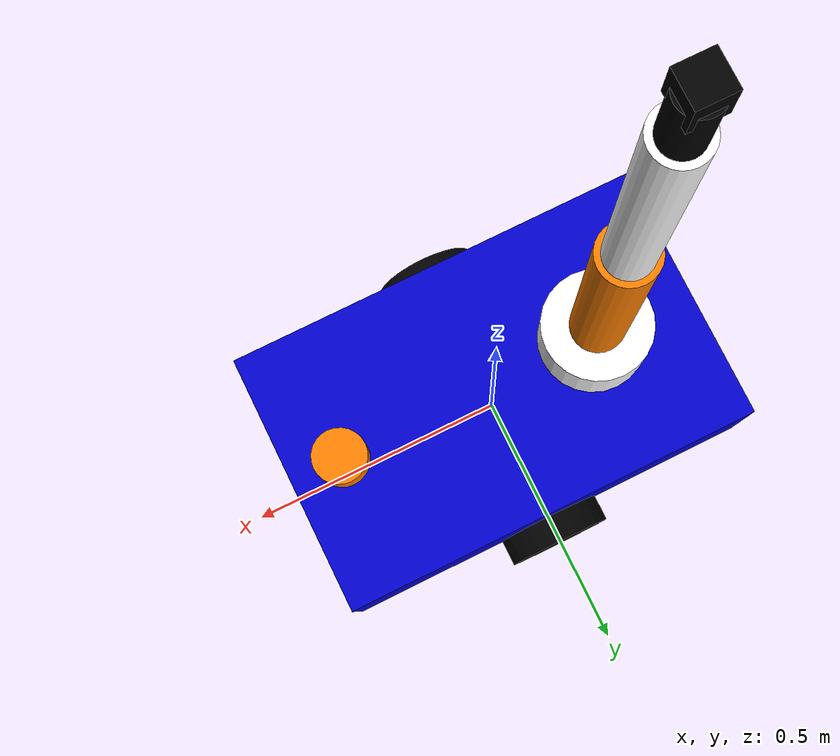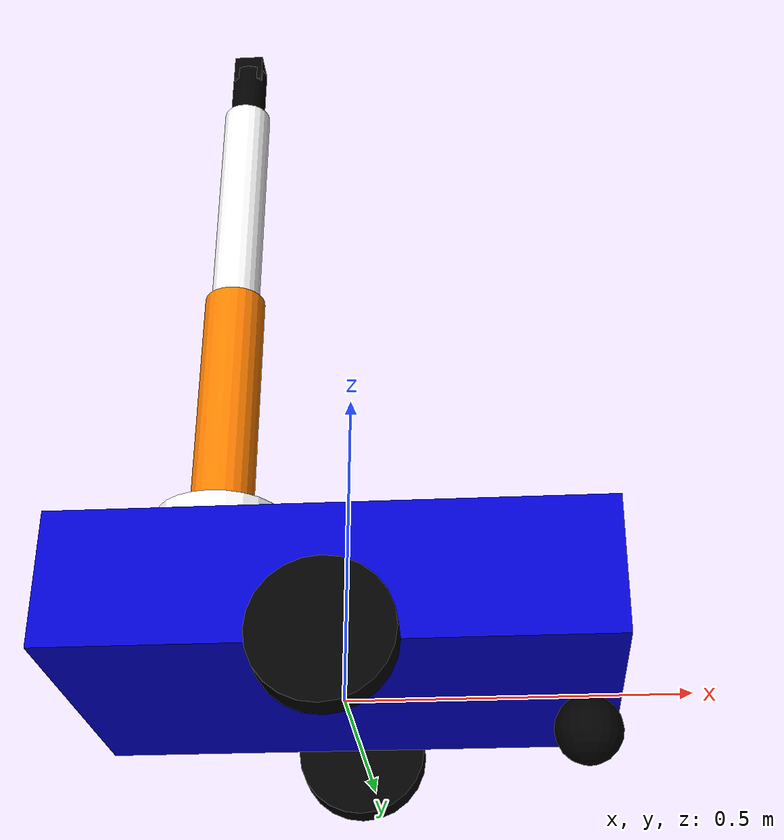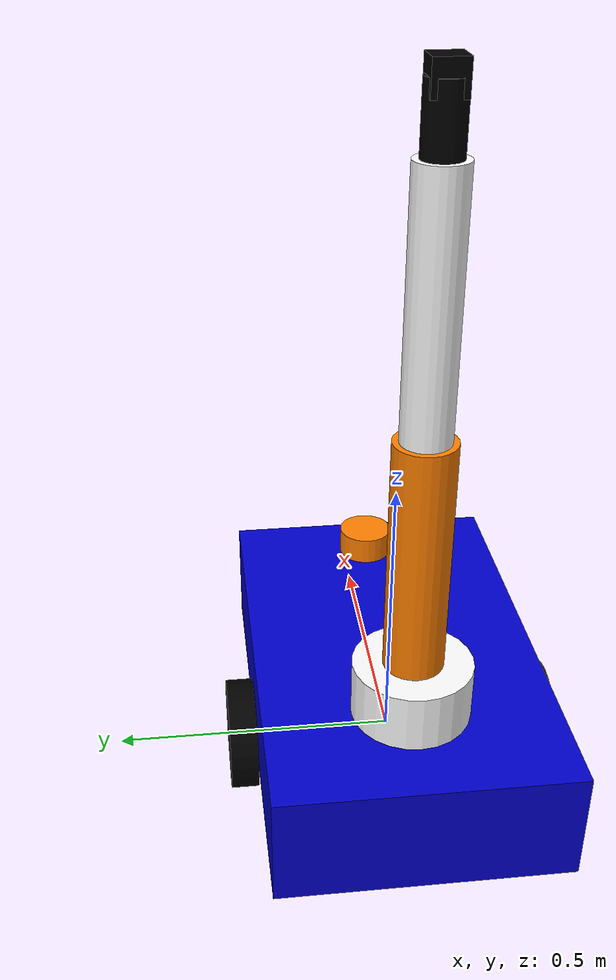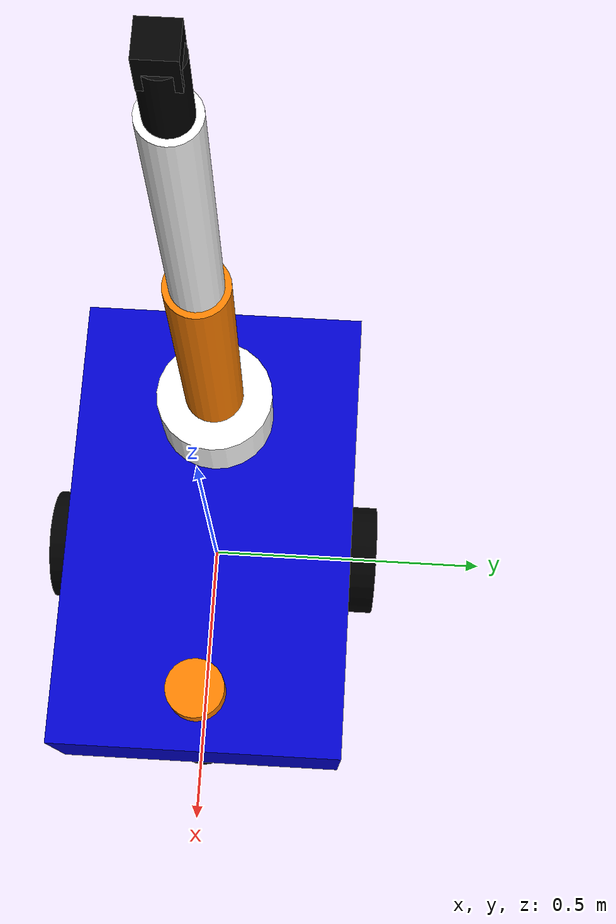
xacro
<?xml version="1.0"?>
<robot xmlns:xacro="http://www.ros.org/wiki/xacro" name="charging_robot">

  <!-- Constants for robot dimensions -->
  <xacro:property name="PI" value="3.1415926535897931"/>
  <xacro:property name="base_mass" value="10.0"/>
  <xacro:property name="base_width" value="0.5"/>
  <xacro:property name="base_length" value="0.8"/>
  <xacro:property name="base_height" value="0.2"/>
  <xacro:property name="wheel_radius" value="0.1"/>
  <xacro:property name="wheel_width" value="0.05"/>
  <xacro:property name="arm_base_height" value="0.1"/>
  <xacro:property name="arm_link_length" value="0.4"/>

  <!-- Material macros -->
  <material name="blue"> <color rgba="0 0 0.8 1"/> </material>
  <material name="black"> <color rgba="0 0 0 1"/> </material>
  <material name="white"> <color rgba="1 1 1 1"/> </material>
  <material name="orange"> <color rgba="1 0.5 0 1"/> </material>

  <!-- Dummy root link for some tools -->
  <link name="base_footprint"/>

  <joint name="base_footprint_joint" type="fixed">
    <parent link="base_footprint"/>
    <child link="base_link"/>
    <origin xyz="0 0 ${wheel_radius}" rpy="0 0 0"/>
  </joint>

  <!-- Base Link -->
  <link name="base_link">
    <visual>
      <geometry> <box size="${base_length} ${base_width} ${base_height}"/> </geometry>
      <material name="blue"/>
    </visual>
    <collision>
      <geometry> <box size="${base_length} ${base_width} ${base_height}"/> </geometry>
    </collision>
    <inertial>
      <mass value="${base_mass}"/>
      <origin xyz="0 0 0" rpy="0 0 0"/>
      <inertia ixx="0.2" ixy="0" ixz="0" iyy="0.4" iyz="0" izz="0.5"/>
    </inertial>
  </link>

  <!-- Wheels -->
  <xacro:macro name="wheel" params="prefix side">
    <link name="${prefix}_wheel">
      <visual>
        <origin xyz="0 0 0" rpy="${PI/2} 0 0"/>
        <geometry> <cylinder radius="${wheel_radius}" length="${wheel_width}"/> </geometry>
        <material name="black"/>
      </visual>
      <collision>
        <origin xyz="0 0 0" rpy="${PI/2} 0 0"/>
        <geometry> <cylinder radius="${wheel_radius}" length="${wheel_width}"/> </geometry>
      </collision>
      <inertial>
        <mass value="0.5"/>
        <inertia ixx="0.001" ixy="0" ixz="0" iyy="0.001" iyz="0" izz="0.001"/>
      </inertial>
    </link>

    <joint name="${prefix}_wheel_joint" type="continuous">
      <parent link="base_link"/>
      <child link="${prefix}_wheel"/>
      <origin xyz="0 ${side * (base_width/2 + wheel_width/2)} -0.1" rpy="0 0 0"/>
      <axis xyz="0 1 0"/>
    </joint>
  </xacro:macro>

  <xacro:wheel prefix="left" side="1"/>
  <xacro:wheel prefix="right" side="-1"/>

  <!-- Caster Wheel -->
  <link name="caster">
    <visual>
      <geometry> <sphere radius="${wheel_radius/2}"/> </geometry>
      <material name="black"/>
    </visual>
    <collision>
      <geometry> <sphere radius="${wheel_radius/2}"/> </geometry>
    </collision>
    <inertial>
      <mass value="0.2"/>
      <inertia ixx="0.0001" ixy="0" ixz="0" iyy="0.0001" iyz="0" izz="0.0001"/>
    </inertial>
  </link>

  <joint name="caster_joint" type="fixed">
    <parent link="base_link"/>
    <child link="caster"/>
    <origin xyz="${base_length/2 - wheel_radius/2} 0 -${wheel_radius/2 + 0.1}" rpy="0 0 0"/>
  </joint>

  <!-- Arm Base -->
  <link name="arm_base">
    <visual>
      <geometry> <cylinder radius="0.1" length="${arm_base_height}"/> </geometry>
      <material name="white"/>
    </visual>
    <collision>
      <geometry> <cylinder radius="0.1" length="${arm_base_height}"/> </geometry>
    </collision>
    <inertial>
      <mass value="1.0"/>
      <inertia ixx="0.01" ixy="0" ixz="0" iyy="0.01" iyz="0" izz="0.01"/>
    </inertial>
  </link>

  <joint name="arm_base_joint" type="fixed">
    <parent link="base_link"/>
    <child link="arm_base"/>
    <origin xyz="-0.2 0 ${base_height/2 + arm_base_height/2}" rpy="0 0 0"/>
  </joint>

  <!-- Arm Links -->
  <link name="link1">
    <visual>
      <origin xyz="0 0 ${arm_link_length/2}" rpy="0 0 0"/>
      <geometry> <cylinder radius="0.05" length="${arm_link_length}"/> </geometry>
      <material name="orange"/>
    </visual>
    <collision>
      <origin xyz="0 0 ${arm_link_length/2}" rpy="0 0 0"/>
      <geometry> <cylinder radius="0.05" length="${arm_link_length}"/> </geometry>
    </collision>
    <inertial>
      <mass value="0.5"/>
      <inertia ixx="0.01" ixy="0" ixz="0" iyy="0.01" iyz="0" izz="0.01"/>
    </inertial>
  </link>

  <joint name="joint1" type="revolute">
    <parent link="arm_base"/>
    <child link="link1"/>
    <origin xyz="0 0 ${arm_base_height/2}" rpy="0 0 0"/>
    <axis xyz="0 0 1"/>
    <limit lower="-3.14" upper="3.14" effort="10.0" velocity="1.0"/>
  </joint>

  <link name="link2">
    <visual>
      <origin xyz="0 0 ${arm_link_length/2}" rpy="0 0 0"/>
      <geometry> <cylinder radius="0.04" length="${arm_link_length}"/> </geometry>
      <material name="white"/>
    </visual>
    <collision>
      <origin xyz="0 0 ${arm_link_length/2}" rpy="0 0 0"/>
      <geometry> <cylinder radius="0.04" length="${arm_link_length}"/> </geometry>
    </collision>
    <inertial>
      <mass value="0.3"/>
      <inertia ixx="0.01" ixy="0" ixz="0" iyy="0.01" iyz="0" izz="0.01"/>
    </inertial>
  </link>

  <joint name="joint2" type="revolute">
    <parent link="link1"/>
    <child link="link2"/>
    <origin xyz="0 0 ${arm_link_length}" rpy="0 0 0"/>
    <axis xyz="0 1 0"/>
    <limit lower="-1.57" upper="1.57" effort="10.0" velocity="1.0"/>
  </joint>

  <!-- Charging Gun (End Effector) -->
  <link name="charging_gun">
    <visual>
      <origin xyz="0 0 0.05" rpy="0 0 0"/>
      <geometry> <cylinder radius="0.03" length="0.1"/> </geometry>
      <material name="black"/>
    </visual>
    <collision>
      <origin xyz="0 0 0.05" rpy="0 0 0"/>
      <geometry> <cylinder radius="0.03" length="0.1"/> </geometry>
    </collision>
    <inertial>
      <mass value="0.1"/>
      <inertia ixx="0.001" ixy="0" ixz="0" iyy="0.001" iyz="0" izz="0.001"/>
    </inertial>
  </link>

  <joint name="joint3" type="revolute">
    <parent link="link2"/>
    <child link="charging_gun"/>
    <origin xyz="0 0 ${arm_link_length}" rpy="0 0 0"/>
    <axis xyz="0 1 0"/>
    <limit lower="-1.57" upper="1.57" effort="5.0" velocity="1.0"/>
  </joint>

  <!-- Camera for Detection -->
  <link name="camera_link">
    <visual>
      <geometry> <box size="0.05 0.05 0.05"/> </geometry>
      <material name="black"/>
    </visual>
  </link>

  <joint name="camera_joint" type="fixed">
    <parent link="charging_gun"/>
    <child link="camera_link"/>
    <origin xyz="0 0 0.1" rpy="0 -${PI/2} 0"/>
  </joint>

  <!-- LIDAR Sensor -->
  <link name="lidar_link">
    <visual>
      <geometry> <cylinder radius="0.05" length="0.05"/> </geometry>
      <material name="orange"/>
    </visual>
  </link>

  <joint name="lidar_joint" type="fixed">
    <parent link="base_link"/>
    <child link="lidar_link"/>
    <origin xyz="${base_length/2 - 0.1} 0 ${base_height/2 + 0.025}" rpy="0 0 0"/>
  </joint>

  <!-- Gazebo plugins -->
  <gazebo>
    <plugin name="gazebo_ros_diff_drive" filename="libgazebo_ros_diff_drive.so">
      <left_joint>left_wheel_joint</left_joint>
      <right_joint>right_wheel_joint</right_joint>
      <wheel_separation>${base_width + wheel_width}</wheel_separation>
      <wheel_diameter>${2 * wheel_radius}</wheel_diameter>
      <publish_odom>true</publish_odom>
      <publish_odom_tf>true</publish_odom_tf>
      <publish_wheel_tf>true</publish_wheel_tf>
      <odometry_frame>odom</odometry_frame>
      <robot_base_frame>base_footprint</robot_base_frame>
    </plugin>
  </gazebo>

  <gazebo reference="camera_link">
    <sensor type="camera" name="camera">
      <update_rate>15.0</update_rate>
      <camera name="head">
        <horizontal_fov>1.3962634</horizontal_fov>
        <image>
          <width>640</width>
          <height>480</height>
          <format>R8G8B8</format>
        </image>
        <clip> <near>0.02</near> <far>300</far> </clip>
      </camera>
      <plugin name="camera_controller" filename="libgazebo_ros_camera.so">
        <ros>
          <namespace>camera</namespace>
        </ros>
        <frame_name>camera_link</frame_name>
      </plugin>
    </sensor>
  </gazebo>

  <gazebo reference="lidar_link">
    <sensor type="ray" name="lidar">
      <pose>0 0 0 0 0 0</pose>
      <visualize>true</visualize>
      <update_rate>10</update_rate>
      <ray>
        <scan>
          <horizontal>
            <samples>360</samples>
            <resolution>1</resolution>
            <min_angle>-3.14</min_angle>
            <max_angle>3.14</max_angle>
          </horizontal>
        </scan>
        <range>
          <min>0.3</min>
          <max>12.0</max>
          <resolution>0.01</resolution>
        </range>
      </ray>
      <plugin name="lidar_controller" filename="libgazebo_ros_ray_sensor.so">
        <ros>
          <remapping>~/out:=scan</remapping>
        </ros>
        <output_type>sensor_msgs/LaserScan</output_type>
        <frame_name>lidar_link</frame_name>
      </plugin>
    </sensor>
  </gazebo>

  <!-- ros2_control -->
  <ros2_control name="GazeboSystem" type="system">
    <hardware>
      <plugin>gazebo_ros2_control/GazeboSystem</plugin>
    </hardware>
    <joint name="joint1">
      <command_interface name="position"/>
      <state_interface name="position"/>
      <state_interface name="velocity"/>
    </joint>
    <joint name="joint2">
      <command_interface name="position"/>
      <state_interface name="position"/>
      <state_interface name="velocity"/>
    </joint>
    <joint name="joint3">
      <command_interface name="position"/>
      <state_interface name="position"/>
      <state_interface name="velocity"/>
    </joint>
  </ros2_control>

  <gazebo>
    <plugin name="gazebo_ros2_control" filename="libgazebo_ros2_control.so">
      <parameters>$(find charge_port)/config/controllers/arm_controllers.yaml</parameters>
    </plugin>
  </gazebo>

</robot>
